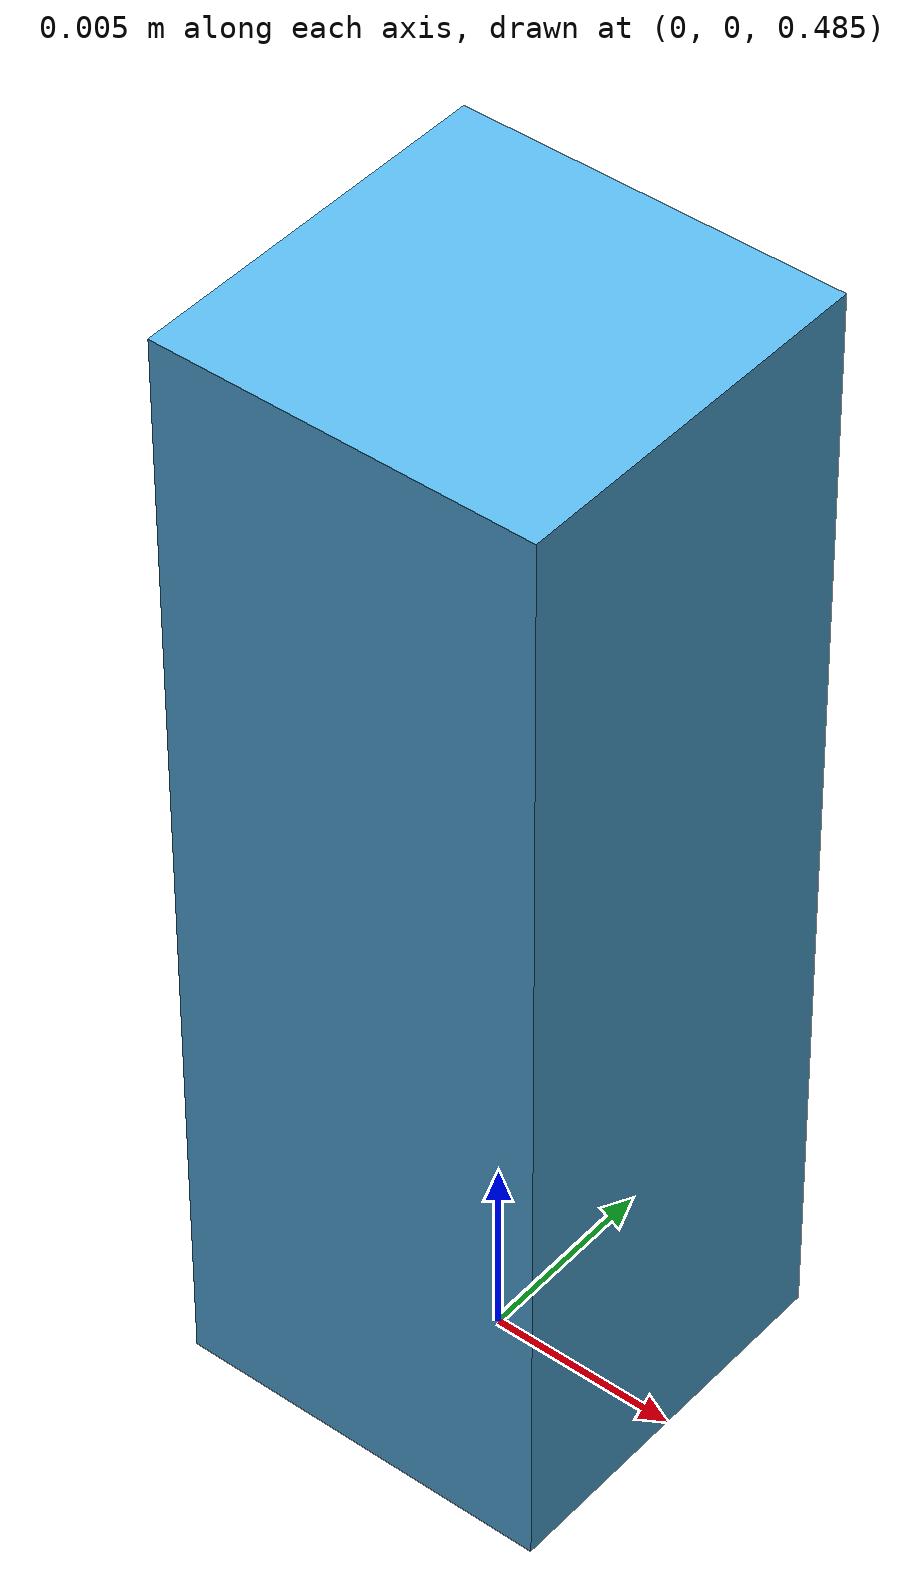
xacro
<?xml version="1.0" ?>
<robot name="simple_camera" xmlns:xacro="http://www.ros.org/wiki/xacro">

  <link name="world">
      <origin xyz="0.0 0.0 0.0"/>
  </link>

  <joint name="camera_joint" type="fixed">
      <parent link="world"/>
      <child link="camera_link"/>
      <origin rpy="0.0 1.5708 1.5708" xyz="0 0.0 0.5"/>   rpy这样设置 垂直向下拍摄  xyz 这样设置 高度0.5m
  </joint>

  <link name="camera_link">
    <visual>
      <origin xyz="0 0 0.0" rpy="0 0 0"/>
      <geometry>
        <box size="0.03 0.01 0.01"/>  这个 尺寸 大小 无所谓
      </geometry>
    </visual>

    <inertial>
      <mass value="10" />
      <origin xyz="0 0 0" rpy="0 0 0"/>
      <inertia ixx="1e-6" ixy="0" ixz="0" iyy="1e-6" iyz="0" izz="1e-6" />
    </inertial>
  </link>

  <!-- camera simulator plug-in -->
  <gazebo reference="camera_link">    加载 相机 的 插件  下面 配置相机参数
    <sensor type="camera" name="camera">
      <update_rate>30.0</update_rate>
      <camera name="camera">
        <horizontal_fov>0.6</horizontal_fov>   相机 水平视场角
        <image>
          <width>640</width>  像素宽度  u
          <height>480</height> 像素高度 v
          <format>R8G8B8</format>
        </image>
        <clip>
          <near>0.005</near>    最近拍摄距离
          <far>0.9</far>  最远拍摄距离
        </clip>
        <noise>   // 相机噪声
          <type>gaussian</type>
          <mean>0.0</mean>
          <stddev>0.000</stddev>
        </noise>
      </camera>
      <plugin name="camera_controller" filename="libgazebo_ros_camera.so">
        <alwaysOn>true</alwaysOn>
        <updateRate>0.0</updateRate>
        <cameraName>simple_camera</cameraName>
        <imageTopicName>image_raw</imageTopicName>
        <cameraInfoTopicName>camera_info</cameraInfoTopicName>
        <frameName>camera_link</frameName>、
        后面需要 看看 求 得的 和这里一致不 一致   应该 会 差些  更 该 这里值 再看看
        <distortionK1>0.0</distortionK1>   这里的畸变参数均设置为 0   K是 横向畸变参数
        <distortionK2>0.0</distortionK2>   这里的畸变参数均设置为 0
        <distortionK3>0.0</distortionK3>   这里的畸变参数均设置为 0
        <distortionT1>0.0</distortionT1>   这里的畸变参数均设置为 0  T是 切向畸变参数
        <distortionT2>0.0</distortionT2>   这里的畸变参数均设置为 0
      </plugin>
    </sensor>
  </gazebo>

</robot>
